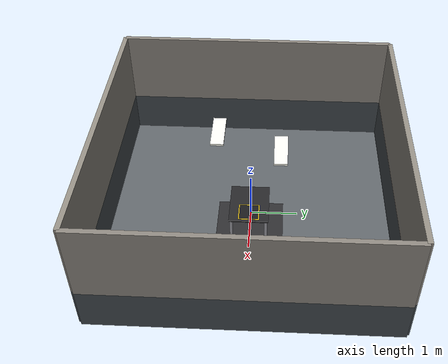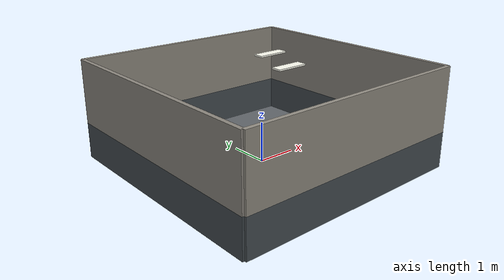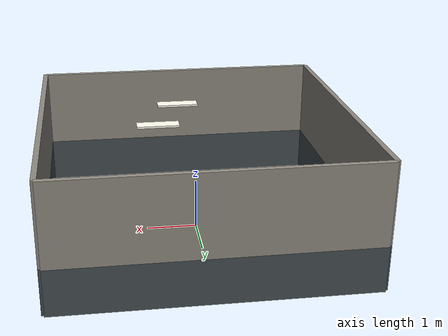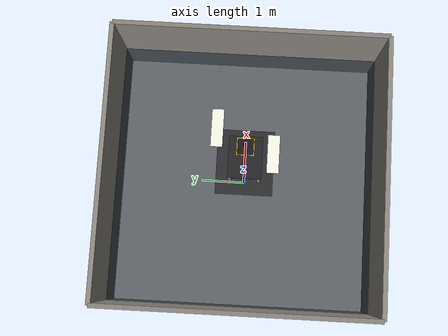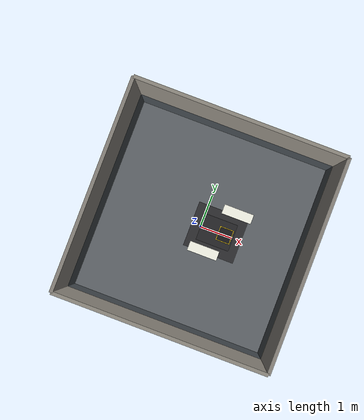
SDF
<sdf version="1.9">
 <world name="lab_world_plant2">
  <plugin filename="gz-sim-physics-system" name="gz::sim::systems::Physics"/>
  <plugin filename="gz-sim-user-commands-system" name="gz::sim::systems::UserCommands"/>
  <plugin filename="gz-sim-scene-broadcaster-system" name="gz::sim::systems::SceneBroadcaster"/>
  <plugin filename="gz-sim-sensors-system" name="gz::sim::systems::Sensors">
   <render_engine>ogre2</render_engine>
  </plugin>
  <plugin filename="gz-sim-contact-system" name="gz::sim::systems::Contact"/>
  <scene>
   <ambient>0.28 0.28 0.3 1</ambient>
   <background>0.4 0.4 0.44 1</background>
   <shadows>true</shadows>
  </scene>
  <gravity>0 0 -9.8</gravity>
  <model name="lab_floor">
   <static>true</static>
   <link name="link">
    <collision name="collision">
     <geometry><plane><normal>0 0 1</normal><size>6 6</size></plane></geometry>
    </collision>
    <visual name="visual">
     <geometry><plane><normal>0 0 1</normal><size>6 6</size></plane></geometry>
     <material>
      <ambient>0.32 0.34 0.36 1</ambient>
      <diffuse>0.38 0.4 0.42 1</diffuse>
      <specular>0.25 0.25 0.25 1</specular>
     </material>
    </visual>
   </link>
  </model>
  <model name="floor_mat">
   <static>true</static>
   <pose>0.5 0 0.001 0 0 0</pose>
   <link name="link">
    <visual name="visual">
     <geometry><box><size>1.6 1.4 0.002</size></box></geometry>
     <material><ambient>0.15 0.15 0.16 1</ambient><diffuse>0.18 0.18 0.19 1</diffuse></material>
    </visual>
   </link>
  </model>
  <model name="wall_north_lower">
   <static>true</static>
   <pose>0 3 0.45 0 0 0</pose>
   <link name="link">
    <collision name="collision"><geometry><box><size>6 0.1 0.9</size></box></geometry></collision>
    <visual name="visual">
     <geometry><box><size>6 0.1 0.9</size></box></geometry>
     <material><ambient>0.22 0.25 0.27 1</ambient><diffuse>0.28 0.31 0.33 1</diffuse></material>
    </visual>
   </link>
  </model>
  <model name="wall_north_upper">
   <static>true</static>
   <pose>0 3 1.7 0 0 0</pose>
   <link name="link">
    <collision name="collision"><geometry><box><size>6 0.1 1.6</size></box></geometry></collision>
    <visual name="visual">
     <geometry><box><size>6 0.1 1.6</size></box></geometry>
     <material><ambient>0.5 0.48 0.44 1</ambient><diffuse>0.58 0.56 0.52 1</diffuse></material>
    </visual>
   </link>
  </model>
  <model name="wall_south_lower">
   <static>true</static>
   <pose>0 -3 0.45 0 0 0</pose>
   <link name="link">
    <collision name="collision"><geometry><box><size>6 0.1 0.9</size></box></geometry></collision>
    <visual name="visual">
     <geometry><box><size>6 0.1 0.9</size></box></geometry>
     <material><ambient>0.22 0.25 0.27 1</ambient><diffuse>0.28 0.31 0.33 1</diffuse></material>
    </visual>
   </link>
  </model>
  <model name="wall_south_upper">
   <static>true</static>
   <pose>0 -3 1.7 0 0 0</pose>
   <link name="link">
    <collision name="collision"><geometry><box><size>6 0.1 1.6</size></box></geometry></collision>
    <visual name="visual">
     <geometry><box><size>6 0.1 1.6</size></box></geometry>
     <material><ambient>0.5 0.48 0.44 1</ambient><diffuse>0.58 0.56 0.52 1</diffuse></material>
    </visual>
   </link>
  </model>
  <model name="wall_east_lower">
   <static>true</static>
   <pose>3 0 0.45 0 0 1.5708</pose>
   <link name="link">
    <collision name="collision"><geometry><box><size>6 0.1 0.9</size></box></geometry></collision>
    <visual name="visual">
     <geometry><box><size>6 0.1 0.9</size></box></geometry>
     <material><ambient>0.2 0.23 0.25 1</ambient><diffuse>0.26 0.29 0.31 1</diffuse></material>
    </visual>
   </link>
  </model>
  <model name="wall_east_upper">
   <static>true</static>
   <pose>3 0 1.7 0 0 1.5708</pose>
   <link name="link">
    <collision name="collision"><geometry><box><size>6 0.1 1.6</size></box></geometry></collision>
    <visual name="visual">
     <geometry><box><size>6 0.1 1.6</size></box></geometry>
     <material><ambient>0.47 0.45 0.42 1</ambient><diffuse>0.55 0.53 0.5 1</diffuse></material>
    </visual>
   </link>
  </model>
  <model name="wall_west_lower">
   <static>true</static>
   <pose>-3 0 0.45 0 0 1.5708</pose>
   <link name="link">
    <collision name="collision"><geometry><box><size>6 0.1 0.9</size></box></geometry></collision>
    <visual name="visual">
     <geometry><box><size>6 0.1 0.9</size></box></geometry>
     <material><ambient>0.2 0.23 0.25 1</ambient><diffuse>0.26 0.29 0.31 1</diffuse></material>
    </visual>
   </link>
  </model>
  <model name="wall_west_upper">
   <static>true</static>
   <pose>-3 0 1.7 0 0 1.5708</pose>
   <link name="link">
    <collision name="collision"><geometry><box><size>6 0.1 1.6</size></box></geometry></collision>
    <visual name="visual">
     <geometry><box><size>6 0.1 1.6</size></box></geometry>
     <material><ambient>0.47 0.45 0.42 1</ambient><diffuse>0.55 0.53 0.5 1</diffuse></material>
    </visual>
   </link>
  </model>
  <model name="light_fixture_1">
   <static>true</static>
   <pose>0.3 -0.6 2.47 0 0 0</pose>
   <link name="link">
    <visual name="visual">
     <geometry><box><size>0.8 0.25 0.04</size></box></geometry>
     <material>
      <ambient>1 1 0.95 1</ambient>
      <diffuse>1 1 0.95 1</diffuse>
      <emissive>0.5 0.5 0.46 1</emissive>
     </material>
    </visual>
   </link>
  </model>
  <model name="light_fixture_2">
   <static>true</static>
   <pose>0.8 0.6 2.47 0 0 0</pose>
   <link name="link">
    <visual name="visual">
     <geometry><box><size>0.8 0.25 0.04</size></box></geometry>
     <material>
      <ambient>1 1 0.95 1</ambient>
      <diffuse>1 1 0.95 1</diffuse>
      <emissive>0.5 0.5 0.46 1</emissive>
     </material>
    </visual>
   </link>
  </model>
  <light name="ceiling_light_1" type="point">
   <pose>0.3 -0.6 2.4 0 0 0</pose>
   <diffuse>0.55 0.55 0.5 1</diffuse>
   <specular>0.2 0.2 0.2 1</specular>
   <attenuation>
    <range>10</range>
    <constant>0.5</constant>
    <linear>0.15</linear>
    <quadratic>0.03</quadratic>
   </attenuation>
  </light>
  <light name="ceiling_light_2" type="point">
   <pose>0.8 0.6 2.4 0 0 0</pose>
   <diffuse>1 1 0.95 1</diffuse>
   <specular>0.5 0.5 0.5 1</specular>
   <attenuation>
    <range>12</range>
    <constant>0.3</constant>
    <linear>0.06</linear>
    <quadratic>0.012</quadratic>
   </attenuation>
  </light>
  <light name="fill_light" type="directional">
   <pose>0 0 5 0 0 0</pose>
   <diffuse>0.25 0.25 0.25 1</diffuse>
   <specular>0.1 0.1 0.1 1</specular>
   <direction>-0.3 0.3 -0.9</direction>
   <cast_shadows>false</cast_shadows>
  </light>
  <model name="lab_table">
   <static>true</static>
   <pose>0.5 0 0 0 0 0</pose>
   <link name="tabletop">
    <collision name="top_collision">
     <pose>0 0 0.75 0 0 0</pose>
     <geometry><box><size>1.0 0.8 0.04</size></box></geometry>
    </collision>
    <visual name="top_visual">
     <pose>0 0 0.75 0 0 0</pose>
     <geometry><box><size>1.0 0.8 0.04</size></box></geometry>
     <material>
      <ambient>0.12 0.12 0.13 1</ambient>
      <diffuse>0.15 0.15 0.16 1</diffuse>
      <specular>0.6 0.6 0.6 1</specular>
     </material>
    </visual>
    <collision name="leg_fl_collision">
     <pose>0.45 0.35 0.365 0 0 0</pose>
     <geometry><cylinder><radius>0.03</radius><length>0.73</length></cylinder></geometry>
    </collision>
    <visual name="leg_fl_visual">
     <pose>0.45 0.35 0.365 0 0 0</pose>
     <geometry><cylinder><radius>0.03</radius><length>0.73</length></cylinder></geometry>
     <material>
      <ambient>0.55 0.55 0.58 1</ambient>
      <diffuse>0.65 0.65 0.68 1</diffuse>
      <specular>0.8 0.8 0.8 1</specular>
     </material>
    </visual>
    <collision name="leg_fr_collision">
     <pose>0.45 -0.35 0.365 0 0 0</pose>
     <geometry><cylinder><radius>0.03</radius><length>0.73</length></cylinder></geometry>
    </collision>
    <visual name="leg_fr_visual">
     <pose>0.45 -0.35 0.365 0 0 0</pose>
     <geometry><cylinder><radius>0.03</radius><length>0.73</length></cylinder></geometry>
     <material>
      <ambient>0.55 0.55 0.58 1</ambient>
      <diffuse>0.65 0.65 0.68 1</diffuse>
      <specular>0.8 0.8 0.8 1</specular>
     </material>
    </visual>
    <collision name="leg_bl_collision">
     <pose>-0.45 0.35 0.365 0 0 0</pose>
     <geometry><cylinder><radius>0.03</radius><length>0.73</length></cylinder></geometry>
    </collision>
    <visual name="leg_bl_visual">
     <pose>-0.45 0.35 0.365 0 0 0</pose>
     <geometry><cylinder><radius>0.03</radius><length>0.73</length></cylinder></geometry>
     <material>
      <ambient>0.55 0.55 0.58 1</ambient>
      <diffuse>0.65 0.65 0.68 1</diffuse>
      <specular>0.8 0.8 0.8 1</specular>
     </material>
    </visual>
    <collision name="leg_br_collision">
     <pose>-0.45 -0.35 0.365 0 0 0</pose>
     <geometry><cylinder><radius>0.03</radius><length>0.73</length></cylinder></geometry>
    </collision>
    <visual name="leg_br_visual">
     <pose>-0.45 -0.35 0.365 0 0 0</pose>
     <geometry><cylinder><radius>0.03</radius><length>0.73</length></cylinder></geometry>
     <material>
      <ambient>0.55 0.55 0.58 1</ambient>
      <diffuse>0.65 0.65 0.68 1</diffuse>
      <specular>0.8 0.8 0.8 1</specular>
     </material>
    </visual>
   </link>
  </model>
  <model name="detection_zone_border">
   <static>true</static>
   <pose>0.75 0 0.7705 0 0 0</pose>
   <link name="link">
    <visual name="visual">
     <geometry><box><size>0.42 0.42 0.001</size></box></geometry>
     <material><ambient>0.9 0.75 0.05 1</ambient><diffuse>0.95 0.8 0.1 1</diffuse></material>
    </visual>
   </link>
  </model>
  <model name="detection_zone_fill">
   <static>true</static>
   <pose>0.75 0 0.7715 0 0 0</pose>
   <link name="link">
    <visual name="visual">
     <geometry><box><size>0.38 0.38 0.001</size></box></geometry>
     <material><ambient>0.08 0.08 0.09 1</ambient><diffuse>0.1 0.1 0.11 1</diffuse></material>
    </visual>
   </link>
  </model>
 </world>
</sdf>
